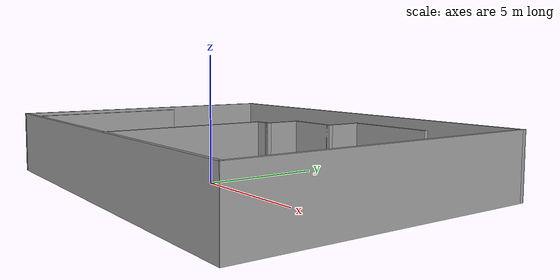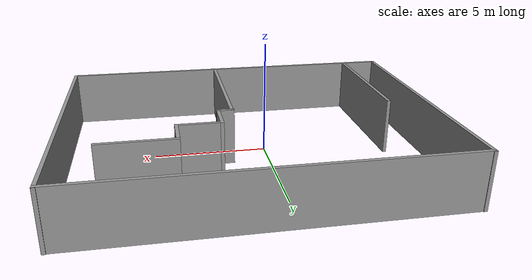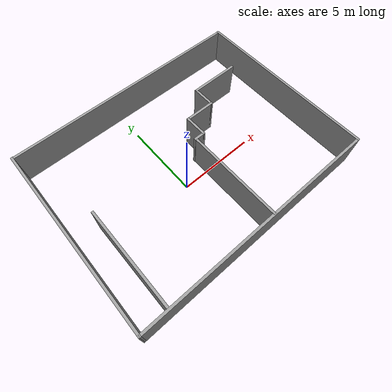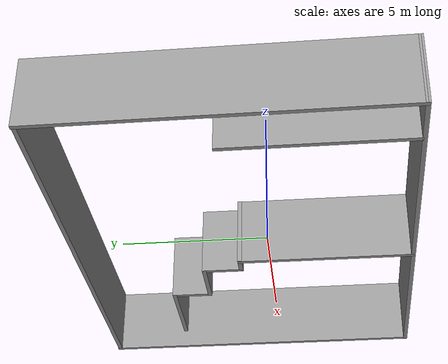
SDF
<?xml version='1.0'?>
<sdf version='1.7'>
  <model name='compact_scenario'>
    <pose>0.849499 0.906405 0 0 -0 0</pose>
    <link name='Wall_0'>
      <collision name='Wall_0_Collision'>
        <geometry>
          <box>
            <size>12.0524 0.15 2.5</size>
          </box>
        </geometry>
        <pose>0 0 1.25 0 -0 0</pose>
      </collision>
      <visual name='Wall_0_Visual'>
        <pose>0 0 1.25 0 -0 0</pose>
        <geometry>
          <box>
            <size>12.0524 0.15 2.5</size>
          </box>
        </geometry>
        <material>
          <script>
            <uri>file://media/materials/scripts/gazebo.material</uri>
            <name>Gazebo/Grey</name>
          </script>
          <ambient>1 1 1 1</ambient>
        </material>
        <meta>
          <layer>0</layer>
        </meta>
      </visual>
      <pose>-7.925 0.034695 0 0 -0 1.5655</pose>
    </link>
    <link name='Wall_10'>
      <collision name='Wall_10_Collision'>
        <geometry>
          <box>
            <size>2 0.15 2.5</size>
          </box>
        </geometry>
        <pose>0 0 1.25 0 -0 0</pose>
      </collision>
      <visual name='Wall_10_Visual'>
        <pose>0 0 1.25 0 -0 0</pose>
        <geometry>
          <box>
            <size>2 0.15 2.5</size>
          </box>
        </geometry>
        <material>
          <script>
            <uri>file://media/materials/scripts/gazebo.material</uri>
            <name>Gazebo/Grey</name>
          </script>
          <ambient>1 1 1 1</ambient>
        </material>
        <meta>
          <layer>0</layer>
        </meta>
      </visual>
      <pose>2.32707 1.54953 0 0 -0 0</pose>
    </link>
    <link name='Wall_11'>
      <collision name='Wall_11_Collision'>
        <geometry>
          <box>
            <size>1.5 0.15 2.5</size>
          </box>
        </geometry>
        <pose>0 0 1.25 0 -0 0</pose>
      </collision>
      <visual name='Wall_11_Visual'>
        <pose>0 0 1.25 0 -0 0</pose>
        <geometry>
          <box>
            <size>1.5 0.15 2.5</size>
          </box>
        </geometry>
        <material>
          <script>
            <uri>file://media/materials/scripts/gazebo.material</uri>
            <name>Gazebo/Grey</name>
          </script>
          <ambient>1 1 1 1</ambient>
        </material>
        <meta>
          <layer>0</layer>
        </meta>
      </visual>
      <pose>3.25206 2.22453 0 0 -0 1.5708</pose>
    </link>
    <link name='Wall_12'>
      <collision name='Wall_12_Collision'>
        <geometry>
          <box>
            <size>3.25 0.15 2.5</size>
          </box>
        </geometry>
        <pose>0 0 1.25 0 -0 0</pose>
      </collision>
      <visual name='Wall_12_Visual'>
        <pose>0 0 1.25 0 -0 0</pose>
        <geometry>
          <box>
            <size>3.25 0.15 2.5</size>
          </box>
        </geometry>
        <material>
          <script>
            <uri>file://media/materials/scripts/gazebo.material</uri>
            <name>Gazebo/Grey</name>
          </script>
          <ambient>1 1 1 1</ambient>
        </material>
        <meta>
          <layer>0</layer>
        </meta>
      </visual>
      <pose>4.80206 2.89953 0 0 -0 0</pose>
    </link>
    <link name='Wall_16'>
      <collision name='Wall_16_Collision'>
        <geometry>
          <box>
            <size>6.25 0.15 2.5</size>
          </box>
        </geometry>
        <pose>0 0 1.25 0 -0 0</pose>
      </collision>
      <visual name='Wall_16_Visual'>
        <pose>0 0 1.25 0 -0 0</pose>
        <geometry>
          <box>
            <size>6.25 0.15 2.5</size>
          </box>
        </geometry>
        <material>
          <script>
            <uri>file://media/materials/scripts/gazebo.material</uri>
            <name>Gazebo/Grey</name>
          </script>
          <ambient>1 1 1 1</ambient>
        </material>
        <meta>
          <layer>0</layer>
        </meta>
      </visual>
      <pose>-6.26278 -2.77067 0 0 -0 1.5708</pose>
    </link>
    <link name='Wall_2'>
      <collision name='Wall_2_Collision'>
        <geometry>
          <box>
            <size>15.9738 0.15 2.5</size>
          </box>
        </geometry>
        <pose>0 0 1.25 0 -0 0</pose>
      </collision>
      <visual name='Wall_2_Visual'>
        <pose>0 0 1.25 0 -0 0</pose>
        <geometry>
          <box>
            <size>15.9738 0.15 2.5</size>
          </box>
        </geometry>
        <material>
          <script>
            <uri>file://media/materials/scripts/gazebo.material</uri>
            <name>Gazebo/Grey</name>
          </script>
          <ambient>1 1 1 1</ambient>
        </material>
        <meta>
          <layer>0</layer>
        </meta>
      </visual>
      <pose>-0.044699 -5.9511 0 0 -0 -0.004385</pose>
    </link>
    <link name='Wall_4'>
      <collision name='Wall_4_Collision'>
        <geometry>
          <box>
            <size>12.0528 0.15 2.5</size>
          </box>
        </geometry>
        <pose>0 0 1.25 0 -0 0</pose>
      </collision>
      <visual name='Wall_4_Visual'>
        <pose>0 0 1.25 0 -0 0</pose>
        <geometry>
          <box>
            <size>12.0528 0.15 2.5</size>
          </box>
        </geometry>
        <material>
          <script>
            <uri>file://media/materials/scripts/gazebo.material</uri>
            <name>Gazebo/Grey</name>
          </script>
          <ambient>1 1 1 1</ambient>
        </material>
        <meta>
          <layer>0</layer>
        </meta>
      </visual>
      <pose>7.9251 -0.034501 0 0 -0 1.56552</pose>
    </link>
    <link name='Wall_5'>
      <collision name='Wall_5_Collision'>
        <geometry>
          <box>
            <size>16 0.15 2.5</size>
          </box>
        </geometry>
        <pose>0 0 1.25 0 -0 0</pose>
      </collision>
      <visual name='Wall_5_Visual'>
        <pose>0 0 1.25 0 -0 0</pose>
        <geometry>
          <box>
            <size>16 0.15 2.5</size>
          </box>
        </geometry>
        <material>
          <script>
            <uri>file://media/materials/scripts/gazebo.material</uri>
            <name>Gazebo/Grey</name>
          </script>
          <ambient>1 1 1 1</ambient>
        </material>
        <meta>
          <layer>0</layer>
        </meta>
      </visual>
      <pose>0.031501 5.92469 0 0 -0 3.13724</pose>
    </link>
    <link name='Wall_7'>
      <collision name='Wall_7_Collision'>
        <geometry>
          <box>
            <size>6.25 0.15 2.5</size>
          </box>
        </geometry>
        <pose>0 0 1.25 0 -0 0</pose>
      </collision>
      <visual name='Wall_7_Visual'>
        <pose>0 0 1.25 0 -0 0</pose>
        <geometry>
          <box>
            <size>6.25 0.15 2.5</size>
          </box>
        </geometry>
        <material>
          <script>
            <uri>file://media/materials/scripts/gazebo.material</uri>
            <name>Gazebo/Grey</name>
          </script>
          <ambient>1 1 1 1</ambient>
        </material>
        <meta>
          <layer>0</layer>
        </meta>
      </visual>
      <pose>0.812873 -2.85047 0 0 -0 1.5708</pose>
    </link>
    <link name='Wall_8'>
      <collision name='Wall_8_Collision'>
        <geometry>
          <box>
            <size>0.765793 0.15 2.5</size>
          </box>
        </geometry>
        <pose>0 0 1.25 0 -0 0</pose>
      </collision>
      <visual name='Wall_8_Visual'>
        <pose>0 0 1.25 0 -0 0</pose>
        <geometry>
          <box>
            <size>0.765793 0.15 2.5</size>
          </box>
        </geometry>
        <material>
          <script>
            <uri>file://media/materials/scripts/gazebo.material</uri>
            <name>Gazebo/Grey</name>
          </script>
          <ambient>1 1 1 1</ambient>
        </material>
        <meta>
          <layer>0</layer>
        </meta>
      </visual>
      <pose>1.09417 0.199533 0 0 -0 0</pose>
    </link>
    <link name='Wall_9'>
      <collision name='Wall_9_Collision'>
        <geometry>
          <box>
            <size>1.5 0.15 2.5</size>
          </box>
        </geometry>
        <pose>0 0 1.25 0 -0 0</pose>
      </collision>
      <visual name='Wall_9_Visual'>
        <pose>0 0 1.25 0 -0 0</pose>
        <geometry>
          <box>
            <size>1.5 0.15 2.5</size>
          </box>
        </geometry>
        <material>
          <script>
            <uri>file://media/materials/scripts/gazebo.material</uri>
            <name>Gazebo/Grey</name>
          </script>
          <ambient>1 1 1 1</ambient>
        </material>
        <meta>
          <layer>0</layer>
        </meta>
      </visual>
      <pose>1.40206 0.874533 0 0 -0 1.5708</pose>
    </link>
    <static>1</static>
  </model>
</sdf>
